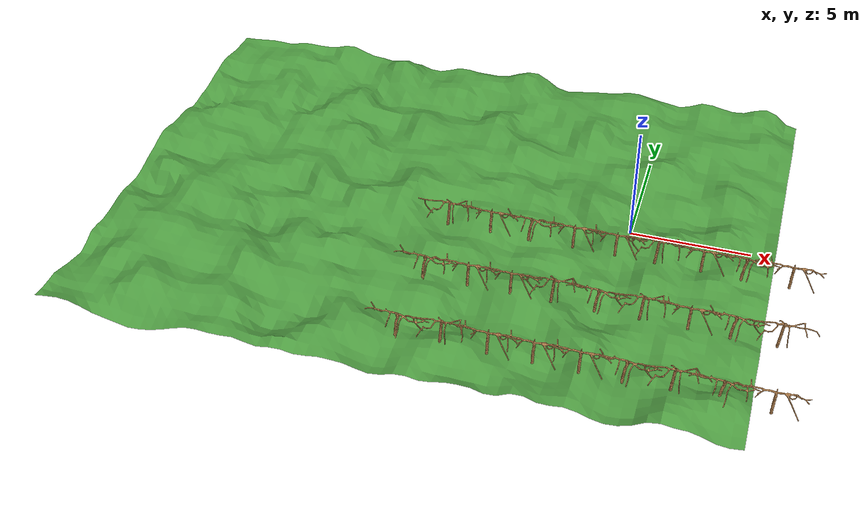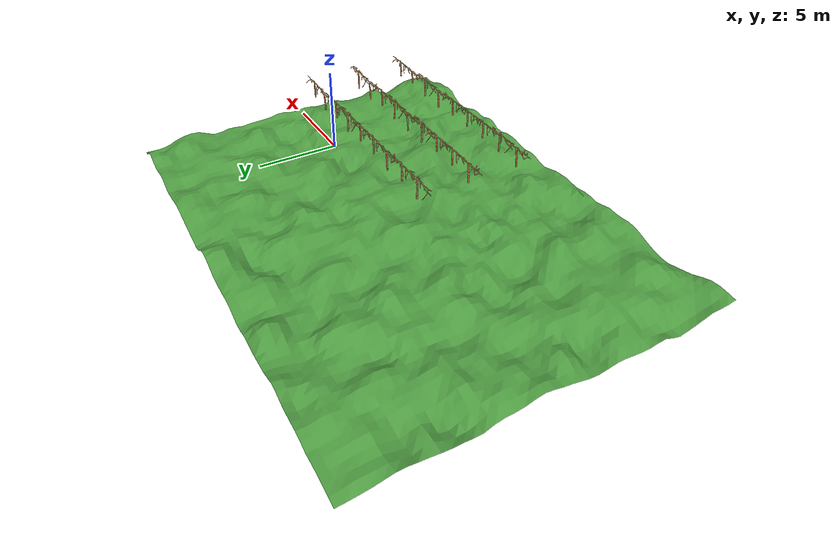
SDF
<sdf version="1.6">
 <world name="default">
  <model name="ground_plane">
   <static>1</static>
   <link name="link">
    <collision name="collision">
     <geometry>
      <mesh><uri>model://Rough_terrain/meshes/rough_terrain.stl</uri><scale>1 1 1</scale></mesh>
     </geometry>
     <surface>
      <contact><collide_bitmask>65535</collide_bitmask></contact>
      <friction><ode><mu>100</mu><mu2>50</mu2></ode></friction>
     </surface>
    </collision>
    <visual name="visual">
     <cast_shadows>0</cast_shadows>
     <geometry>
      <mesh><uri>model://Rough_terrain/meshes/rough_terrain.stl</uri><scale>1 1 1</scale></mesh>
     </geometry>
     <material>
      <script><uri>file://media/materials/scripts/gazebo.material</uri><name>Gazebo/Grass</name></script>
     </material>
    </visual>
   </link>
  </model>
  <model name="1_1">
   <static>1</static>
   <link name="link">
    <collision name="collision">
     <geometry>
      <mesh><uri>model://Vine3/meshes/mega_cloud7_processed.stl</uri><scale>1 1 1</scale></mesh>
     </geometry>
     <surface><friction><ode><mu>100</mu><mu2>50</mu2></ode></friction></surface>
    </collision>
    <visual name="visual">
     <geometry>
      <mesh><uri>model://Vine3/meshes/mega_cloud7_processed.stl</uri><scale>1 1 1</scale></mesh>
     </geometry>
     <material>
      <script><uri>file://media/materials/scripts/gazebo.material</uri><name>Gazebo/Wood</name></script>
     </material>
    </visual>
   </link>
   <pose>-7.50000 -9.75000 0.65000 0 0 1.57080</pose>
  </model>
  <model name="1_2">
   <static>1</static>
   <link name="link">
    <collision name="collision">
     <geometry>
      <mesh><uri>model://Vine1/meshes/mega_cloud3_processed.stl</uri><scale>1 1 1</scale></mesh>
     </geometry>
     <surface><friction><ode><mu>100</mu><mu2>50</mu2></ode></friction></surface>
    </collision>
    <visual name="visual">
     <geometry>
      <mesh><uri>model://Vine1/meshes/mega_cloud3_processed.stl</uri><scale>1 1 1</scale></mesh>
     </geometry>
     <material>
      <script><uri>file://media/materials/scripts/gazebo.material</uri><name>Gazebo/Wood</name></script>
     </material>
    </visual>
   </link>
   <pose>-5.74000 -9.75000 0.65000 0 0 1.57080</pose>
  </model>
  <model name="1_3">
   <static>1</static>
   <link name="link">
    <collision name="collision">
     <geometry>
      <mesh><uri>model://Vine2/meshes/mega_cloud16_processed.stl</uri><scale>1 1 1</scale></mesh>
     </geometry>
     <surface><friction><ode><mu>100</mu><mu2>50</mu2></ode></friction></surface>
    </collision>
    <visual name="visual">
     <geometry>
      <mesh><uri>model://Vine2/meshes/mega_cloud16_processed.stl</uri><scale>1 1 1</scale></mesh>
     </geometry>
     <material>
      <script><uri>file://media/materials/scripts/gazebo.material</uri><name>Gazebo/Wood</name></script>
     </material>
    </visual>
   </link>
   <pose>-3.98000 -9.75000 0.65000 0 0 1.57080</pose>
  </model>
  <model name="1_4">
   <static>1</static>
   <link name="link">
    <collision name="collision">
     <geometry>
      <mesh><uri>model://Vine2/meshes/mega_cloud16_processed.stl</uri><scale>1 1 1</scale></mesh>
     </geometry>
     <surface><friction><ode><mu>100</mu><mu2>50</mu2></ode></friction></surface>
    </collision>
    <visual name="visual">
     <geometry>
      <mesh><uri>model://Vine2/meshes/mega_cloud16_processed.stl</uri><scale>1 1 1</scale></mesh>
     </geometry>
     <material>
      <script><uri>file://media/materials/scripts/gazebo.material</uri><name>Gazebo/Wood</name></script>
     </material>
    </visual>
   </link>
   <pose>-2.22000 -9.75000 0.65000 0 0 1.57080</pose>
  </model>
  <model name="1_5">
   <static>1</static>
   <link name="link">
    <collision name="collision">
     <geometry>
      <mesh><uri>model://Vine2/meshes/mega_cloud16_processed.stl</uri><scale>1 1 1</scale></mesh>
     </geometry>
     <surface><friction><ode><mu>100</mu><mu2>50</mu2></ode></friction></surface>
    </collision>
    <visual name="visual">
     <geometry>
      <mesh><uri>model://Vine2/meshes/mega_cloud16_processed.stl</uri><scale>1 1 1</scale></mesh>
     </geometry>
     <material>
      <script><uri>file://media/materials/scripts/gazebo.material</uri><name>Gazebo/Wood</name></script>
     </material>
    </visual>
   </link>
   <pose>-0.46000 -9.75000 0.65000 0 0 1.57080</pose>
  </model>
  <model name="1_6">
   <static>1</static>
   <link name="link">
    <collision name="collision">
     <geometry>
      <mesh><uri>model://Vine3/meshes/mega_cloud7_processed.stl</uri><scale>1 1 1</scale></mesh>
     </geometry>
     <surface><friction><ode><mu>100</mu><mu2>50</mu2></ode></friction></surface>
    </collision>
    <visual name="visual">
     <geometry>
      <mesh><uri>model://Vine3/meshes/mega_cloud7_processed.stl</uri><scale>1 1 1</scale></mesh>
     </geometry>
     <material>
      <script><uri>file://media/materials/scripts/gazebo.material</uri><name>Gazebo/Wood</name></script>
     </material>
    </visual>
   </link>
   <pose>1.30000 -9.75000 0.65000 0 0 1.57080</pose>
  </model>
  <model name="1_7">
   <static>1</static>
   <link name="link">
    <collision name="collision">
     <geometry>
      <mesh><uri>model://Vine1/meshes/mega_cloud3_processed.stl</uri><scale>1 1 1</scale></mesh>
     </geometry>
     <surface><friction><ode><mu>100</mu><mu2>50</mu2></ode></friction></surface>
    </collision>
    <visual name="visual">
     <geometry>
      <mesh><uri>model://Vine1/meshes/mega_cloud3_processed.stl</uri><scale>1 1 1</scale></mesh>
     </geometry>
     <material>
      <script><uri>file://media/materials/scripts/gazebo.material</uri><name>Gazebo/Wood</name></script>
     </material>
    </visual>
   </link>
   <pose>3.06000 -9.75000 0.65000 0 0 1.57080</pose>
  </model>
  <model name="1_8">
   <static>1</static>
   <link name="link">
    <collision name="collision">
     <geometry>
      <mesh><uri>model://Vine3/meshes/mega_cloud7_processed.stl</uri><scale>1 1 1</scale></mesh>
     </geometry>
     <surface><friction><ode><mu>100</mu><mu2>50</mu2></ode></friction></surface>
    </collision>
    <visual name="visual">
     <geometry>
      <mesh><uri>model://Vine3/meshes/mega_cloud7_processed.stl</uri><scale>1 1 1</scale></mesh>
     </geometry>
     <material>
      <script><uri>file://media/materials/scripts/gazebo.material</uri><name>Gazebo/Wood</name></script>
     </material>
    </visual>
   </link>
   <pose>4.82000 -9.75000 0.65000 0 0 1.57080</pose>
  </model>
  <model name="1_9">
   <static>1</static>
   <link name="link">
    <collision name="collision">
     <geometry>
      <mesh><uri>model://Vine2/meshes/mega_cloud16_processed.stl</uri><scale>1 1 1</scale></mesh>
     </geometry>
     <surface><friction><ode><mu>100</mu><mu2>50</mu2></ode></friction></surface>
    </collision>
    <visual name="visual">
     <geometry>
      <mesh><uri>model://Vine2/meshes/mega_cloud16_processed.stl</uri><scale>1 1 1</scale></mesh>
     </geometry>
     <material>
      <script><uri>file://media/materials/scripts/gazebo.material</uri><name>Gazebo/Wood</name></script>
     </material>
    </visual>
   </link>
   <pose>6.58000 -9.75000 0.65000 0 0 1.57080</pose>
  </model>
  <model name="2_1">
   <static>1</static>
   <link name="link">
    <collision name="collision">
     <geometry>
      <mesh><uri>model://Vine3/meshes/mega_cloud7_processed.stl</uri><scale>1 1 1</scale></mesh>
     </geometry>
     <surface><friction><ode><mu>100</mu><mu2>50</mu2></ode></friction></surface>
    </collision>
    <visual name="visual">
     <geometry>
      <mesh><uri>model://Vine3/meshes/mega_cloud7_processed.stl</uri><scale>1 1 1</scale></mesh>
     </geometry>
     <material>
      <script><uri>file://media/materials/scripts/gazebo.material</uri><name>Gazebo/Wood</name></script>
     </material>
    </visual>
   </link>
   <pose>-7.50000 -6.25000 0.65000 0 0 1.57080</pose>
  </model>
  <model name="2_2">
   <static>1</static>
   <link name="link">
    <collision name="collision">
     <geometry>
      <mesh><uri>model://Vine2/meshes/mega_cloud16_processed.stl</uri><scale>1 1 1</scale></mesh>
     </geometry>
     <surface><friction><ode><mu>100</mu><mu2>50</mu2></ode></friction></surface>
    </collision>
    <visual name="visual">
     <geometry>
      <mesh><uri>model://Vine2/meshes/mega_cloud16_processed.stl</uri><scale>1 1 1</scale></mesh>
     </geometry>
     <material>
      <script><uri>file://media/materials/scripts/gazebo.material</uri><name>Gazebo/Wood</name></script>
     </material>
    </visual>
   </link>
   <pose>-5.74000 -6.25000 0.65000 0 0 1.57080</pose>
  </model>
  <model name="2_3">
   <static>1</static>
   <link name="link">
    <collision name="collision">
     <geometry>
      <mesh><uri>model://Vine2/meshes/mega_cloud16_processed.stl</uri><scale>1 1 1</scale></mesh>
     </geometry>
     <surface><friction><ode><mu>100</mu><mu2>50</mu2></ode></friction></surface>
    </collision>
    <visual name="visual">
     <geometry>
      <mesh><uri>model://Vine2/meshes/mega_cloud16_processed.stl</uri><scale>1 1 1</scale></mesh>
     </geometry>
     <material>
      <script><uri>file://media/materials/scripts/gazebo.material</uri><name>Gazebo/Wood</name></script>
     </material>
    </visual>
   </link>
   <pose>-3.98000 -6.25000 0.65000 0 0 1.57080</pose>
  </model>
  <model name="2_4">
   <static>1</static>
   <link name="link">
    <collision name="collision">
     <geometry>
      <mesh><uri>model://Vine1/meshes/mega_cloud3_processed.stl</uri><scale>1 1 1</scale></mesh>
     </geometry>
     <surface><friction><ode><mu>100</mu><mu2>50</mu2></ode></friction></surface>
    </collision>
    <visual name="visual">
     <geometry>
      <mesh><uri>model://Vine1/meshes/mega_cloud3_processed.stl</uri><scale>1 1 1</scale></mesh>
     </geometry>
     <material>
      <script><uri>file://media/materials/scripts/gazebo.material</uri><name>Gazebo/Wood</name></script>
     </material>
    </visual>
   </link>
   <pose>-2.22000 -6.25000 0.65000 0 0 1.57080</pose>
  </model>
  <model name="2_5">
   <static>1</static>
   <link name="link">
    <collision name="collision">
     <geometry>
      <mesh><uri>model://Vine3/meshes/mega_cloud7_processed.stl</uri><scale>1 1 1</scale></mesh>
     </geometry>
     <surface><friction><ode><mu>100</mu><mu2>50</mu2></ode></friction></surface>
    </collision>
    <visual name="visual">
     <geometry>
      <mesh><uri>model://Vine3/meshes/mega_cloud7_processed.stl</uri><scale>1 1 1</scale></mesh>
     </geometry>
     <material>
      <script><uri>file://media/materials/scripts/gazebo.material</uri><name>Gazebo/Wood</name></script>
     </material>
    </visual>
   </link>
   <pose>-0.46000 -6.25000 0.65000 0 0 1.57080</pose>
  </model>
  <model name="2_6">
   <static>1</static>
   <link name="link">
    <collision name="collision">
     <geometry>
      <mesh><uri>model://Vine1/meshes/mega_cloud3_processed.stl</uri><scale>1 1 1</scale></mesh>
     </geometry>
     <surface><friction><ode><mu>100</mu><mu2>50</mu2></ode></friction></surface>
    </collision>
    <visual name="visual">
     <geometry>
      <mesh><uri>model://Vine1/meshes/mega_cloud3_processed.stl</uri><scale>1 1 1</scale></mesh>
     </geometry>
     <material>
      <script><uri>file://media/materials/scripts/gazebo.material</uri><name>Gazebo/Wood</name></script>
     </material>
    </visual>
   </link>
   <pose>1.30000 -6.25000 0.65000 0 0 1.57080</pose>
  </model>
  <model name="2_7">
   <static>1</static>
   <link name="link">
    <collision name="collision">
     <geometry>
      <mesh><uri>model://Vine2/meshes/mega_cloud16_processed.stl</uri><scale>1 1 1</scale></mesh>
     </geometry>
     <surface><friction><ode><mu>100</mu><mu2>50</mu2></ode></friction></surface>
    </collision>
    <visual name="visual">
     <geometry>
      <mesh><uri>model://Vine2/meshes/mega_cloud16_processed.stl</uri><scale>1 1 1</scale></mesh>
     </geometry>
     <material>
      <script><uri>file://media/materials/scripts/gazebo.material</uri><name>Gazebo/Wood</name></script>
     </material>
    </visual>
   </link>
   <pose>3.06000 -6.25000 0.65000 0 0 1.57080</pose>
  </model>
  <model name="2_8">
   <static>1</static>
   <link name="link">
    <collision name="collision">
     <geometry>
      <mesh><uri>model://Vine3/meshes/mega_cloud7_processed.stl</uri><scale>1 1 1</scale></mesh>
     </geometry>
     <surface><friction><ode><mu>100</mu><mu2>50</mu2></ode></friction></surface>
    </collision>
    <visual name="visual">
     <geometry>
      <mesh><uri>model://Vine3/meshes/mega_cloud7_processed.stl</uri><scale>1 1 1</scale></mesh>
     </geometry>
     <material>
      <script><uri>file://media/materials/scripts/gazebo.material</uri><name>Gazebo/Wood</name></script>
     </material>
    </visual>
   </link>
   <pose>4.82000 -6.25000 0.65000 0 0 1.57080</pose>
  </model>
  <model name="2_9">
   <static>1</static>
   <link name="link">
    <collision name="collision">
     <geometry>
      <mesh><uri>model://Vine1/meshes/mega_cloud3_processed.stl</uri><scale>1 1 1</scale></mesh>
     </geometry>
     <surface><friction><ode><mu>100</mu><mu2>50</mu2></ode></friction></surface>
    </collision>
    <visual name="visual">
     <geometry>
      <mesh><uri>model://Vine1/meshes/mega_cloud3_processed.stl</uri><scale>1 1 1</scale></mesh>
     </geometry>
     <material>
      <script><uri>file://media/materials/scripts/gazebo.material</uri><name>Gazebo/Wood</name></script>
     </material>
    </visual>
   </link>
   <pose>6.58000 -6.25000 0.65000 0 0 1.57080</pose>
  </model>
  <model name="3_1">
   <static>1</static>
   <link name="link">
    <collision name="collision">
     <geometry>
      <mesh><uri>model://Vine1/meshes/mega_cloud3_processed.stl</uri><scale>1 1 1</scale></mesh>
     </geometry>
     <surface><friction><ode><mu>100</mu><mu2>50</mu2></ode></friction></surface>
    </collision>
    <visual name="visual">
     <geometry>
      <mesh><uri>model://Vine1/meshes/mega_cloud3_processed.stl</uri><scale>1 1 1</scale></mesh>
     </geometry>
     <material>
      <script><uri>file://media/materials/scripts/gazebo.material</uri><name>Gazebo/Wood</name></script>
     </material>
    </visual>
   </link>
   <pose>-7.50000 -2.75000 0.65000 0 0 1.57080</pose>
  </model>
  <model name="3_2">
   <static>1</static>
   <link name="link">
    <collision name="collision">
     <geometry>
      <mesh><uri>model://Vine2/meshes/mega_cloud16_processed.stl</uri><scale>1 1 1</scale></mesh>
     </geometry>
     <surface><friction><ode><mu>100</mu><mu2>50</mu2></ode></friction></surface>
    </collision>
    <visual name="visual">
     <geometry>
      <mesh><uri>model://Vine2/meshes/mega_cloud16_processed.stl</uri><scale>1 1 1</scale></mesh>
     </geometry>
     <material>
      <script><uri>file://media/materials/scripts/gazebo.material</uri><name>Gazebo/Wood</name></script>
     </material>
    </visual>
   </link>
   <pose>-5.74000 -2.75000 0.65000 0 0 1.57080</pose>
  </model>
  <model name="3_3">
   <static>1</static>
   <link name="link">
    <collision name="collision">
     <geometry>
      <mesh><uri>model://Vine3/meshes/mega_cloud7_processed.stl</uri><scale>1 1 1</scale></mesh>
     </geometry>
     <surface><friction><ode><mu>100</mu><mu2>50</mu2></ode></friction></surface>
    </collision>
    <visual name="visual">
     <geometry>
      <mesh><uri>model://Vine3/meshes/mega_cloud7_processed.stl</uri><scale>1 1 1</scale></mesh>
     </geometry>
     <material>
      <script><uri>file://media/materials/scripts/gazebo.material</uri><name>Gazebo/Wood</name></script>
     </material>
    </visual>
   </link>
   <pose>-3.98000 -2.75000 0.65000 0 0 1.57080</pose>
  </model>
  <model name="3_4">
   <static>1</static>
   <link name="link">
    <collision name="collision">
     <geometry>
      <mesh><uri>model://Vine2/meshes/mega_cloud16_processed.stl</uri><scale>1 1 1</scale></mesh>
     </geometry>
     <surface><friction><ode><mu>100</mu><mu2>50</mu2></ode></friction></surface>
    </collision>
    <visual name="visual">
     <geometry>
      <mesh><uri>model://Vine2/meshes/mega_cloud16_processed.stl</uri><scale>1 1 1</scale></mesh>
     </geometry>
     <material>
      <script><uri>file://media/materials/scripts/gazebo.material</uri><name>Gazebo/Wood</name></script>
     </material>
    </visual>
   </link>
   <pose>-2.22000 -2.75000 0.65000 0 0 1.57080</pose>
  </model>
  <model name="3_5">
   <static>1</static>
   <link name="link">
    <collision name="collision">
     <geometry>
      <mesh><uri>model://Vine2/meshes/mega_cloud16_processed.stl</uri><scale>1 1 1</scale></mesh>
     </geometry>
     <surface><friction><ode><mu>100</mu><mu2>50</mu2></ode></friction></surface>
    </collision>
    <visual name="visual">
     <geometry>
      <mesh><uri>model://Vine2/meshes/mega_cloud16_processed.stl</uri><scale>1 1 1</scale></mesh>
     </geometry>
     <material>
      <script><uri>file://media/materials/scripts/gazebo.material</uri><name>Gazebo/Wood</name></script>
     </material>
    </visual>
   </link>
   <pose>-0.46000 -2.75000 0.65000 0 0 1.57080</pose>
  </model>
  <model name="3_6">
   <static>1</static>
   <link name="link">
    <collision name="collision">
     <geometry>
      <mesh><uri>model://Vine1/meshes/mega_cloud3_processed.stl</uri><scale>1 1 1</scale></mesh>
     </geometry>
     <surface><friction><ode><mu>100</mu><mu2>50</mu2></ode></friction></surface>
    </collision>
    <visual name="visual">
     <geometry>
      <mesh><uri>model://Vine1/meshes/mega_cloud3_processed.stl</uri><scale>1 1 1</scale></mesh>
     </geometry>
     <material>
      <script><uri>file://media/materials/scripts/gazebo.material</uri><name>Gazebo/Wood</name></script>
     </material>
    </visual>
   </link>
   <pose>1.30000 -2.75000 0.65000 0 0 1.57080</pose>
  </model>
  <model name="3_7">
   <static>1</static>
   <link name="link">
    <collision name="collision">
     <geometry>
      <mesh><uri>model://Vine2/meshes/mega_cloud16_processed.stl</uri><scale>1 1 1</scale></mesh>
     </geometry>
     <surface><friction><ode><mu>100</mu><mu2>50</mu2></ode></friction></surface>
    </collision>
    <visual name="visual">
     <geometry>
      <mesh><uri>model://Vine2/meshes/mega_cloud16_processed.stl</uri><scale>1 1 1</scale></mesh>
     </geometry>
     <material>
      <script><uri>file://media/materials/scripts/gazebo.material</uri><name>Gazebo/Wood</name></script>
     </material>
    </visual>
   </link>
   <pose>3.06000 -2.75000 0.65000 0 0 1.57080</pose>
  </model>
  <model name="3_8">
   <static>1</static>
   <link name="link">
    <collision name="collision">
     <geometry>
      <mesh><uri>model://Vine3/meshes/mega_cloud7_processed.stl</uri><scale>1 1 1</scale></mesh>
     </geometry>
     <surface><friction><ode><mu>100</mu><mu2>50</mu2></ode></friction></surface>
    </collision>
    <visual name="visual">
     <geometry>
      <mesh><uri>model://Vine3/meshes/mega_cloud7_processed.stl</uri><scale>1 1 1</scale></mesh>
     </geometry>
     <material>
      <script><uri>file://media/materials/scripts/gazebo.material</uri><name>Gazebo/Wood</name></script>
     </material>
    </visual>
   </link>
   <pose>4.82000 -2.75000 0.65000 0 0 1.57080</pose>
  </model>
  <model name="3_9">
   <static>1</static>
   <link name="link">
    <collision name="collision">
     <geometry>
      <mesh><uri>model://Vine2/meshes/mega_cloud16_processed.stl</uri><scale>1 1 1</scale></mesh>
     </geometry>
     <surface><friction><ode><mu>100</mu><mu2>50</mu2></ode></friction></surface>
    </collision>
    <visual name="visual">
     <geometry>
      <mesh><uri>model://Vine2/meshes/mega_cloud16_processed.stl</uri><scale>1 1 1</scale></mesh>
     </geometry>
     <material>
      <script><uri>file://media/materials/scripts/gazebo.material</uri><name>Gazebo/Wood</name></script>
     </material>
    </visual>
   </link>
   <pose>6.58000 -2.75000 0.65000 0 0 1.57080</pose>
  </model>
 </world>
</sdf>
